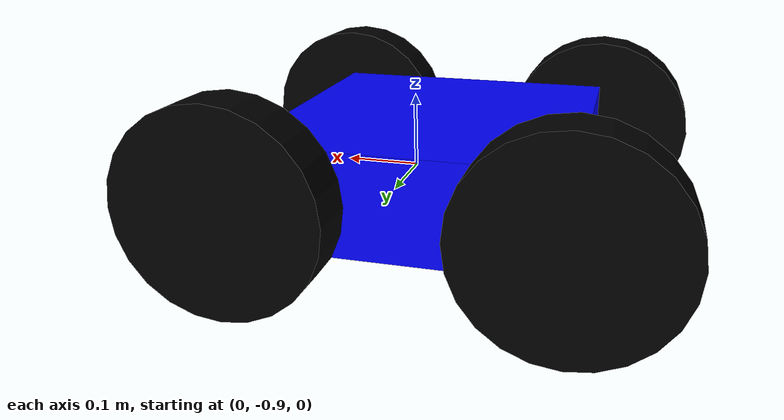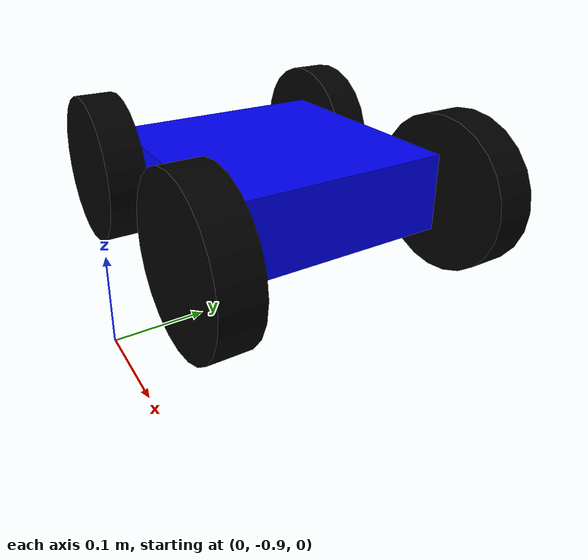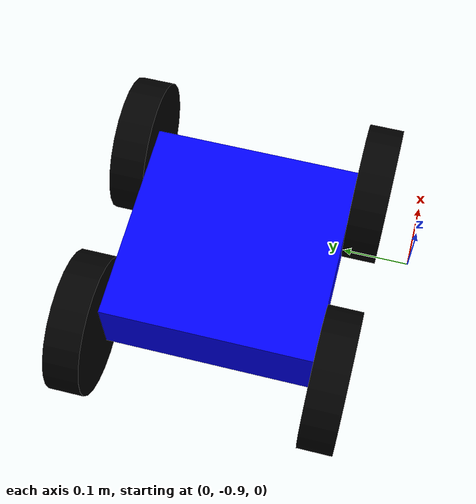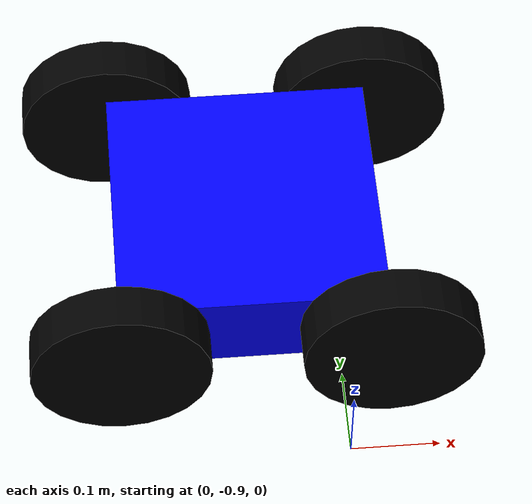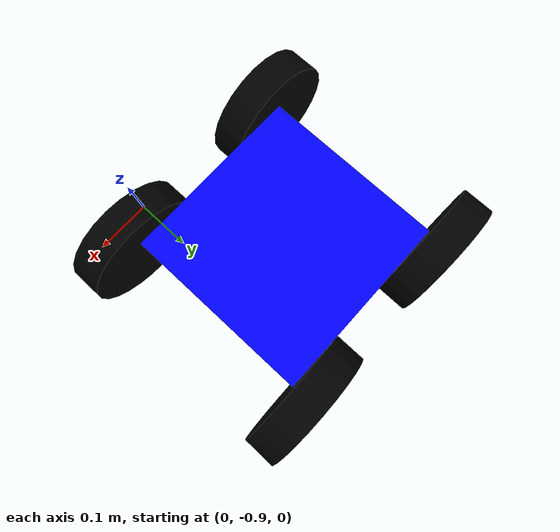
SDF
<sdf version="1.8">
 <world name="simple_world">
  <physics name="1ms" type="ignored">
   <max_step_size>0.001</max_step_size>
   <real_time_factor>1.0</real_time_factor>
  </physics>
  <plugin filename="gz-sim-physics-system" name="gz::sim::systems::Physics"/>
  <plugin filename="gz-sim-scene-broadcaster-system" name="gz::sim::systems::SceneBroadcaster"/>
  <plugin filename="gz-sim-user-commands-system" name="gz::sim::systems::UserCommands"/>
  <plugin filename="gz-sim-sensors-system" name="gz::sim::systems::Sensors"/>
  <plugin filename="gz-sim-imu-system" name="gz::sim::systems::Imu"/>
  <light type="directional" name="sun">
   <pose>0 0 10 0 0 0</pose>
   <diffuse>0.8 0.8 0.8 1</diffuse>
   <specular>0.2 0.2 0.2 1</specular>
   <attenuation>
    <range>1000</range>
    <constant>0.9</constant>
    <linear>0.01</linear>
    <quadratic>0.001</quadratic>
   </attenuation>
   <direction>-0.5 0.1 -0.9</direction>
  </light>
  <model name="Robot">
   <static>false</static>
   <pose>-0.1 -0.65 0.1 0 0 0</pose>
   <link name="base_link">
    <inertial>
     <mass>1.0</mass>
     <inertia><ixx>0.0835</ixx><ixy>0</ixy><ixz>0</ixz><iyy>0.1209</iyy><iyz>0</iyz><izz>0.1209</izz></inertia>
    </inertial>
    <visual name="visual">
     <geometry><box><size>0.3 0.3 0.1</size></box></geometry>
     <material><ambient>0 0 1 1</ambient><diffuse>0 0 1 1</diffuse></material>
    </visual>
    <collision name="collision"><geometry><box><size>0.5 0.3 0.1</size></box></geometry></collision>
    <sensor name="lidar" type="gpu_lidar">
     <pose>0.4 0 0.0 0 0 0</pose>
     <topic>scan</topic>
     <update_rate>10</update_rate>
     <lidar>
      <scan>
       <horizontal>
        <samples>360</samples>
        <resolution>1</resolution>
        <min_angle>-3.14</min_angle>
        <max_angle>3.14</max_angle>
       </horizontal>
      </scan>
      <range><min>0.02</min><max>12.0</max><resolution>0.01</resolution></range>
      <noise><type>gaussian</type><mean>0.0</mean><stddev>0.01</stddev></noise>
     </lidar>
     <visualize>true</visualize>
     <always_on>1</always_on>
    </sensor>
    <sensor name="imu_sensor" type="imu">
     <always_on>1</always_on>
     <update_rate>500</update_rate>
     <visualize>true</visualize>
     <topic>/imu</topic>
    </sensor>
   </link>
   <link name="left_wheel">
    <pose relative_to="base_link">0.15 0.175 0 -1.5708 0 0</pose>
    <inertial>
     <mass>0.5</mass>
     <inertia><ixx>0.00125</ixx><ixy>0</ixy><ixz>0</ixz><iyy>0.00125</iyy><iyz>0</iyz><izz>0.002</izz></inertia>
    </inertial>
    <visual name="visual">
     <geometry><cylinder><radius>0.1</radius><length>0.05</length></cylinder></geometry>
     <material><ambient>0 0 0 1</ambient><diffuse>0 0 0 1</diffuse><specular>0 0 0 1</specular></material>
    </visual>
    <collision name="collision">
     <geometry><cylinder><radius>0.1</radius><length>0.05</length></cylinder></geometry>
    </collision>
   </link>
   <link name="right_wheel">
    <pose relative_to="base_link">0.15 -0.175 0 -1.5708 0 0</pose>
    <inertial>
     <mass>0.5</mass>
     <inertia><ixx>0.00125</ixx><ixy>0</ixy><ixz>0</ixz><iyy>0.00125</iyy><iyz>0</iyz><izz>0.002</izz></inertia>
    </inertial>
    <visual name="visual">
     <geometry><cylinder><radius>0.1</radius><length>0.05</length></cylinder></geometry>
     <material><ambient>0 0 0 1</ambient><diffuse>0 0 0 1</diffuse><specular>0 0 0 1</specular></material>
    </visual>
    <collision name="collision">
     <geometry><cylinder><radius>0.1</radius><length>0.05</length></cylinder></geometry>
    </collision>
   </link>
   <link name="left_wheel_b">
    <pose relative_to="base_link">-0.15 0.175 0 -1.5708 0 0</pose>
    <inertial>
     <mass>0.5</mass>
     <inertia><ixx>0.00125</ixx><ixy>0</ixy><ixz>0</ixz><iyy>0.00125</iyy><iyz>0</iyz><izz>0.002</izz></inertia>
    </inertial>
    <visual name="visual">
     <geometry><cylinder><radius>0.1</radius><length>0.05</length></cylinder></geometry>
     <material><ambient>0 0 0 1</ambient><diffuse>0 0 0 1</diffuse><specular>0 0 0 1</specular></material>
    </visual>
    <collision name="collision">
     <geometry><cylinder><radius>0.1</radius><length>0.05</length></cylinder></geometry>
    </collision>
   </link>
   <link name="right_wheel_b">
    <pose relative_to="base_link">-0.15 -0.175 0 -1.5708 0 0</pose>
    <inertial>
     <mass>0.5</mass>
     <inertia><ixx>0.00125</ixx><ixy>0</ixy><ixz>0</ixz><iyy>0.00125</iyy><iyz>0</iyz><izz>0.002</izz></inertia>
    </inertial>
    <visual name="visual">
     <geometry><cylinder><radius>0.1</radius><length>0.05</length></cylinder></geometry>
     <material><ambient>0 0 0 1</ambient><diffuse>0 0 0 1</diffuse><specular>0 0 0 1</specular></material>
    </visual>
    <collision name="collision">
     <geometry><cylinder><radius>0.1</radius><length>0.05</length></cylinder></geometry>
    </collision>
   </link>
   <joint name="left_wheel_joint" type="revolute">
    <parent>base_link</parent>
    <child>left_wheel</child>
    <axis><xyz>0 0 1</xyz><limit><lower>-1.79769e+308</lower><upper>1.79769e+308</upper></limit></axis>
   </joint>
   <joint name="right_wheel_joint" type="revolute">
    <parent>base_link</parent>
    <child>right_wheel</child>
    <axis><xyz>0 0 1</xyz><limit><lower>-1.79769e+308</lower><upper>1.79769e+308</upper></limit></axis>
   </joint>
   <joint name="left_wheel_joint_b" type="revolute">
    <parent>base_link</parent>
    <child>left_wheel_b</child>
    <axis><xyz>0 0 1</xyz><limit><lower>-1.79769e+308</lower><upper>1.79769e+308</upper></limit></axis>
   </joint>
   <joint name="right_wheel_joint_b" type="revolute">
    <parent>base_link</parent>
    <child>right_wheel_b</child>
    <axis><xyz>0 0 1</xyz><limit><lower>-1.79769e+308</lower><upper>1.79769e+308</upper></limit></axis>
   </joint>
   <plugin filename="gz-sim-diff-drive-system" name="gz::sim::systems::DiffDrive">
    <topic>cmd_vel</topic>
    <left_joint>left_wheel_joint</left_joint>
    <right_joint>right_wheel_joint</right_joint>
    <wheel_separation>0.35</wheel_separation>
    <wheel_radius>0.1</wheel_radius>
   </plugin>
   <plugin filename="gz-sim-diff-drive-system" name="gz::sim::systems::DiffDrive">
    <topic>cmd_vel</topic>
    <left_joint>left_wheel_joint_b</left_joint>
    <right_joint>right_wheel_joint_b</right_joint>
    <wheel_separation>0.35</wheel_separation>
    <wheel_radius>0.1</wheel_radius>
   </plugin>
  </model>
 </world>
</sdf>
